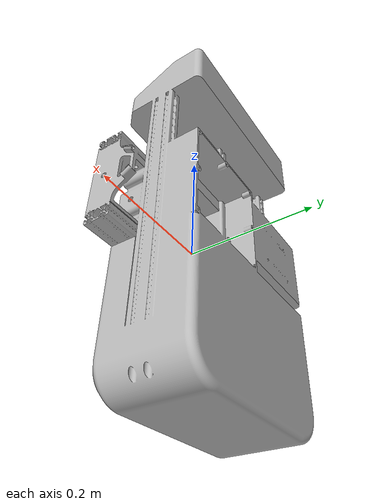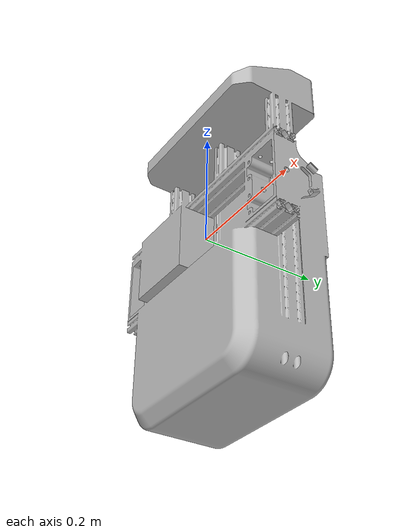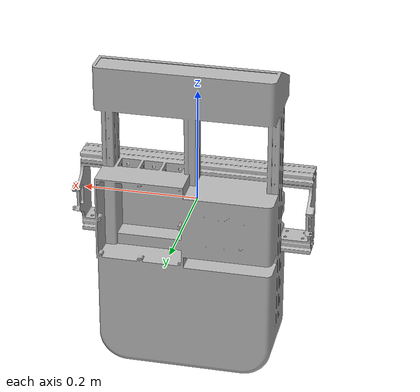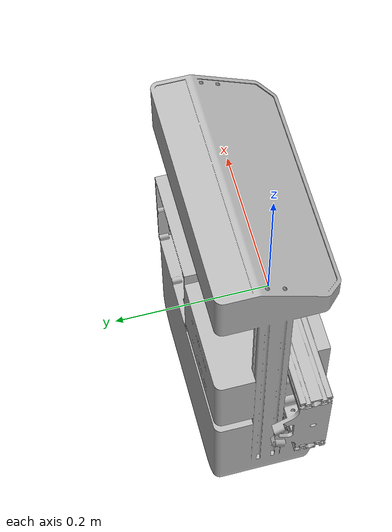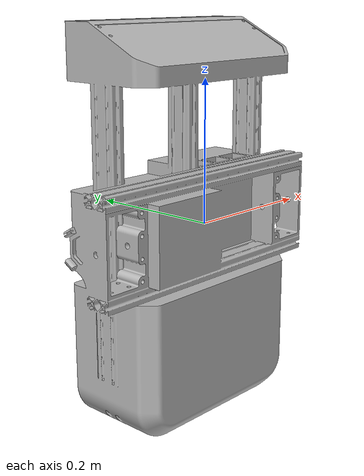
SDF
<?xml version="1.0"?>
<sdf version="1.9">
  <model name="rover_body">
    <static>false</static>
    <link name="link">
      <inertial>
        <mass>73.973153</mass>
        <pose>0.000219 0.035828 -0.003550 0 0 0</pose>
        <inertia>
          <ixx>1.74464762e+00</ixx>
          <ixy>-1.28248976e-03</ixy>
          <ixz>-2.64669482e-04</ixz>
          <iyy>2.37522455e+00</iyy>
          <iyz>-2.01289481e-02</iyz>
          <izz>8.89433999e-01</izz>
        </inertia>
      </inertial>
      <visual name="visual">
        <geometry>
          <mesh>
            <uri>model://rover_body/meshes/rover_body.stl</uri>
            <scale>0.001 0.001 0.001</scale>
          </mesh>
        </geometry>
      </visual>
      <collision name="collision">
        <geometry>
          <mesh>
            <uri>model://rover_body/meshes/rover_body.stl</uri>
            <scale>0.001 0.001 0.001</scale>
          </mesh>
        </geometry>
      </collision>
    </link>
  </model>
</sdf>
